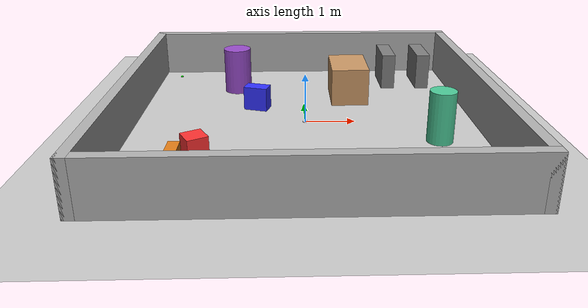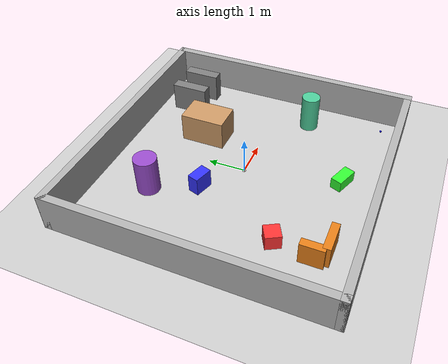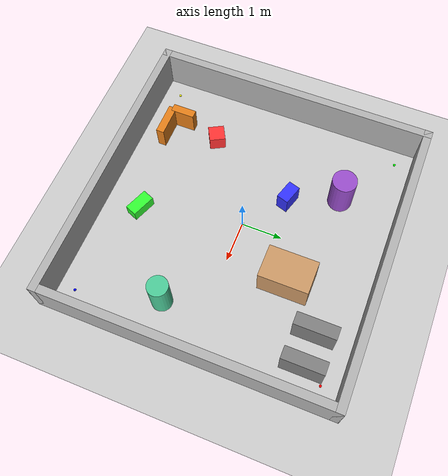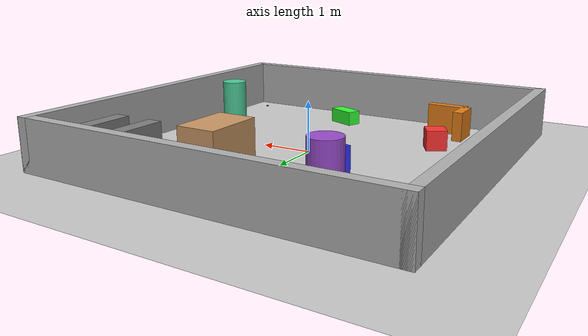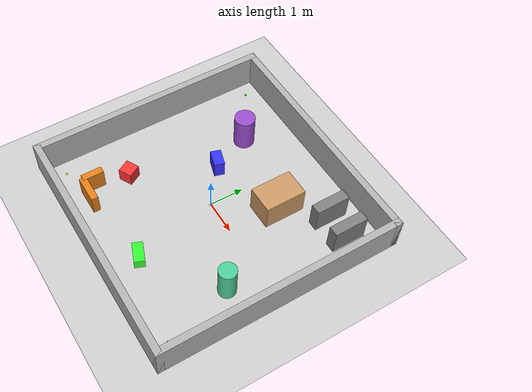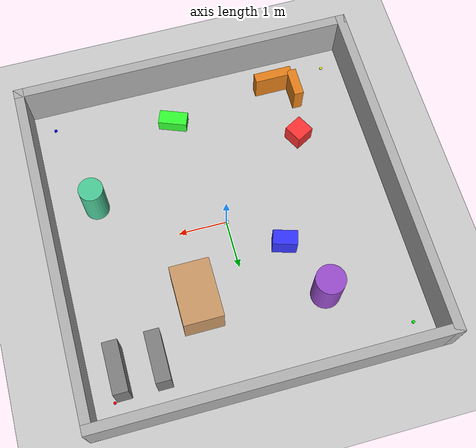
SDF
<?xml version="1.0" ?>
<sdf version="1.6">
  <world name="exploration_test">
    <!-- Include standard models -->
    <include>
      <uri>model://ground_plane</uri>
    </include>
    <include>
      <uri>model://sun</uri>
    </include>

    <!-- Physics settings optimized for navigation testing -->
    <physics name="default" type="ode">
      <max_step_size>0.001</max_step_size>
      <real_time_factor>1.0</real_time_factor>
      <real_time_update_rate>1000</real_time_update_rate>
    </physics>

    <!-- Camera for visual monitoring positioned higher for better view -->
    <gui fullscreen='0'>
      <camera name='user_camera'>
        <pose>0 -8 6 0 0.7 1.57</pose>
        <view_controller>orbit</view_controller>
      </camera>
    </gui>

    <!-- Exploration environment with obstacles for autonomous navigation testing -->

    <!-- Central large obstacle - Table/Platform -->
    <model name="central_table">
      <pose>1.0 1.5 0.4 0 0 0</pose>
      <static>true</static>
      <link name="link">
        <visual name="visual">
          <geometry>
            <box>
              <size>0.8 1.2 0.8</size>
            </box>
          </geometry>
          <material>
            <ambient>0.8 0.6 0.4 1</ambient>
            <diffuse>0.8 0.6 0.4 1</diffuse>
          </material>
        </visual>
        <collision name="collision">
          <geometry>
            <box>
              <size>0.8 1.2 0.8</size>
            </box>
          </geometry>
        </collision>
      </link>
    </model>

    <!-- Wall obstacles to fully enclose the room -->
    <model name="wall_north">
      <pose>0 3.5 0.5 0 0 0</pose>
      <static>true</static>
      <link name="link">
        <visual name="visual">
          <geometry>
            <box>
              <size>7.2 0.2 1.0</size>
            </box>
          </geometry>
          <material>
            <ambient>0.7 0.7 0.7 1</ambient>
            <diffuse>0.7 0.7 0.7 1</diffuse>
          </material>
        </visual>
        <collision name="collision">
          <geometry>
            <box>
              <size>7.2 0.2 1.0</size>
            </box>
          </geometry>
        </collision>
      </link>
    </model>

    <model name="wall_south">
      <pose>0 -3.5 0.5 0 0 0</pose>
      <static>true</static>
      <link name="link">
        <visual name="visual">
          <geometry>
            <box>
              <size>7.2 0.2 1.0</size>
            </box>
          </geometry>
          <material>
            <ambient>0.7 0.7 0.7 1</ambient>
            <diffuse>0.7 0.7 0.7 1</diffuse>
          </material>
        </visual>
        <collision name="collision">
          <geometry>
            <box>
              <size>7.2 0.2 1.0</size>
            </box>
          </geometry>
        </collision>
      </link>
    </model>

    <model name="wall_east">
      <pose>3.5 0 0.5 0 0 0</pose>
      <static>true</static>
      <link name="link">
        <visual name="visual">
          <geometry>
            <box>
              <size>0.2 7.2 1.0</size>
            </box>
          </geometry>
          <material>
            <ambient>0.7 0.7 0.7 1</ambient>
            <diffuse>0.7 0.7 0.7 1</diffuse>
          </material>
        </visual>
        <collision name="collision">
          <geometry>
            <box>
              <size>0.2 7.2 1.0</size>
            </box>
          </geometry>
        </collision>
      </link>
    </model>

    <model name="wall_west">
      <pose>-3.5 0 0.5 0 0 0</pose>
      <static>true</static>
      <link name="link">
        <visual name="visual">
          <geometry>
            <box>
              <size>0.2 7.2 1.0</size>
            </box>
          </geometry>
          <material>
            <ambient>0.7 0.7 0.7 1</ambient>
            <diffuse>0.7 0.7 0.7 1</diffuse>
          </material>
        </visual>
        <collision name="collision">
          <geometry>
            <box>
              <size>0.2 7.2 1.0</size>
            </box>
          </geometry>
        </collision>
      </link>
    </model>

    <!-- Cylindrical obstacles - Pillars -->
    <model name="pillar_1">
      <pose>-1.5 2.0 0.5 0 0 0</pose>
      <static>true</static>
      <link name="link">
        <visual name="visual">
          <geometry>
            <cylinder>
              <radius>0.3</radius>
              <length>1.0</length>
            </cylinder>
          </geometry>
          <material>
            <ambient>0.6 0.3 0.8 1</ambient>
            <diffuse>0.6 0.3 0.8 1</diffuse>
          </material>
        </visual>
        <collision name="collision">
          <geometry>
            <cylinder>
              <radius>0.3</radius>
              <length>1.0</length>
            </cylinder>
          </geometry>
        </collision>
      </link>
    </model>

    <model name="pillar_2">
      <pose>2.5 -1.0 0.5 0 0 0</pose>
      <static>true</static>
      <link name="link">
        <visual name="visual">
          <geometry>
            <cylinder>
              <radius>0.25</radius>
              <length>1.0</length>
            </cylinder>
          </geometry>
          <material>
            <ambient>0.3 0.8 0.6 1</ambient>
            <diffuse>0.3 0.8 0.6 1</diffuse>
          </material>
        </visual>
        <collision name="collision">
          <geometry>
            <cylinder>
              <radius>0.25</radius>
              <length>1.0</length>
            </cylinder>
          </geometry>
        </collision>
      </link>
    </model>

    <!-- Small box obstacles scattered around -->
    <model name="box_obstacle_1">
      <pose>-2.0 -1.5 0.2 0 0 0.5</pose>
      <static>true</static>
      <link name="link">
        <visual name="visual">
          <geometry>
            <box>
              <size>0.4 0.4 0.4</size>
            </box>
          </geometry>
          <material>
            <ambient>1.0 0.2 0.2 1</ambient>
            <diffuse>1.0 0.2 0.2 1</diffuse>
          </material>
        </visual>
        <collision name="collision">
          <geometry>
            <box>
              <size>0.4 0.4 0.4</size>
            </box>
          </geometry>
        </collision>
      </link>
    </model>

    <model name="box_obstacle_2">
      <pose>0.5 -2.5 0.15 0 0 1.2</pose>
      <static>true</static>
      <link name="link">
        <visual name="visual">
          <geometry>
            <box>
              <size>0.3 0.6 0.3</size>
            </box>
          </geometry>
          <material>
            <ambient>0.2 1.0 0.2 1</ambient>
            <diffuse>0.2 1.0 0.2 1</diffuse>
          </material>
        </visual>
        <collision name="collision">
          <geometry>
            <box>
              <size>0.3 0.6 0.3</size>
            </box>
          </geometry>
        </collision>
      </link>
    </model>

    <model name="box_obstacle_3">
      <pose>-1.0 0.8 0.25 0 0 -0.3</pose>
      <static>true</static>
      <link name="link">
        <visual name="visual">
          <geometry>
            <box>
              <size>0.5 0.3 0.5</size>
            </box>
          </geometry>
          <material>
            <ambient>0.2 0.2 1.0 1</ambient>
            <diffuse>0.2 0.2 1.0 1</diffuse>
          </material>
        </visual>
        <collision name="collision">
          <geometry>
            <box>
              <size>0.5 0.3 0.5</size>
            </box>
          </geometry>
        </collision>
      </link>
    </model>

    <!-- L-shaped obstacle to create interesting navigation challenge -->
    <model name="l_obstacle_1">
      <pose>-1.8 -2.8 0.3 0 0 0</pose>
      <static>true</static>
      <link name="link">
        <visual name="visual">
          <geometry>
            <box>
              <size>0.8 0.2 0.6</size>
            </box>
          </geometry>
          <material>
            <ambient>0.9 0.5 0.1 1</ambient>
            <diffuse>0.9 0.5 0.1 1</diffuse>
          </material>
        </visual>
        <collision name="collision">
          <geometry>
            <box>
              <size>0.8 0.2 0.6</size>
            </box>
          </geometry>
        </collision>
      </link>
    </model>

    <model name="l_obstacle_2">
      <pose>-2.2 -2.5 0.3 0 0 0</pose>
      <static>true</static>
      <link name="link">
        <visual name="visual">
          <geometry>
            <box>
              <size>0.2 0.6 0.6</size>
            </box>
          </geometry>
          <material>
            <ambient>0.9 0.5 0.1 1</ambient>
            <diffuse>0.9 0.5 0.1 1</diffuse>
          </material>
        </visual>
        <collision name="collision">
          <geometry>
            <box>
              <size>0.2 0.6 0.6</size>
            </box>
          </geometry>
        </collision>
      </link>
    </model>

    <!-- Narrow corridor entrance - challenging navigation -->
    <model name="narrow_entrance_1">
      <pose>2.0 2.5 0.4 0 0 0</pose>
      <static>true</static>
      <link name="link">
        <visual name="visual">
          <geometry>
            <box>
              <size>0.3 1.0 0.8</size>
            </box>
          </geometry>
          <material>
            <ambient>0.5 0.5 0.5 1</ambient>
            <diffuse>0.5 0.5 0.5 1</diffuse>
          </material>
        </visual>
        <collision name="collision">
          <geometry>
            <box>
              <size>0.3 1.0 0.8</size>
            </box>
          </geometry>
        </collision>
      </link>
    </model>

    <model name="narrow_entrance_2">
      <pose>2.8 2.5 0.4 0 0 0</pose>
      <static>true</static>
      <link name="link">
        <visual name="visual">
          <geometry>
            <box>
              <size>0.3 1.0 0.8</size>
            </box>
          </geometry>
          <material>
            <ambient>0.5 0.5 0.5 1</ambient>
            <diffuse>0.5 0.5 0.5 1</diffuse>
          </material>
        </visual>
        <collision name="collision">
          <geometry>
            <box>
              <size>0.3 1.0 0.8</size>
            </box>
          </geometry>
        </collision>
      </link>
    </model>

    <!-- Reference corner markers (smaller, less obtrusive) -->
    <model name="corner_marker_ne">
      <pose>3.0 3.0 0.01 0 0 0</pose>
      <static>true</static>
      <link name="link">
        <visual name="visual">
          <geometry>
            <cylinder>
              <radius>0.03</radius>
              <length>0.02</length>
            </cylinder>
          </geometry>
          <material>
            <ambient>1.0 0.0 0.0 1</ambient>
            <diffuse>1.0 0.0 0.0 1</diffuse>
          </material>
        </visual>
      </link>
    </model>

    <model name="corner_marker_nw">
      <pose>-3.0 3.0 0.01 0 0 0</pose>
      <static>true</static>
      <link name="link">
        <visual name="visual">
          <geometry>
            <cylinder>
              <radius>0.03</radius>
              <length>0.02</length>
            </cylinder>
          </geometry>
          <material>
            <ambient>0.0 1.0 0.0 1</ambient>
            <diffuse>0.0 1.0 0.0 1</diffuse>
          </material>
        </visual>
      </link>
    </model>

    <model name="corner_marker_se">
      <pose>3.0 -3.0 0.01 0 0 0</pose>
      <static>true</static>
      <link name="link">
        <visual name="visual">
          <geometry>
            <cylinder>
              <radius>0.03</radius>
              <length>0.02</length>
            </cylinder>
          </geometry>
          <material>
            <ambient>0.0 0.0 1.0 1</ambient>
            <diffuse>0.0 0.0 1.0 1</diffuse>
          </material>
        </visual>
      </link>
    </model>

    <model name="corner_marker_sw">
      <pose>-3.0 -3.0 0.01 0 0 0</pose>
      <static>true</static>
      <link name="link">
        <visual name="visual">
          <geometry>
            <cylinder>
              <radius>0.03</radius>
              <length>0.02</length>
            </cylinder>
          </geometry>
          <material>
            <ambient>1.0 1.0 0.0 1</ambient>
            <diffuse>1.0 1.0 0.0 1</diffuse>
          </material>
        </visual>
      </link>
    </model>

    <!-- Center spawn marker for reference -->
    <model name="spawn_marker">
      <pose>0 0 0.01 0 0 0</pose>
      <static>true</static>
      <link name="link">
        <visual name="visual">
          <geometry>
            <cylinder>
              <radius>0.05</radius>
              <length>0.02</length>
            </cylinder>
          </geometry>
          <material>
            <ambient>1.0 1.0 1.0 1</ambient>
            <diffuse>1.0 1.0 1.0 1</diffuse>
          </material>
        </visual>
      </link>
    </model>

  </world>
</sdf>
